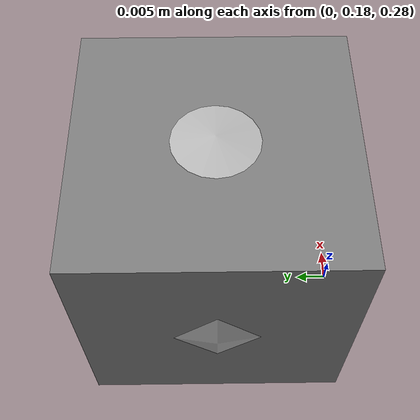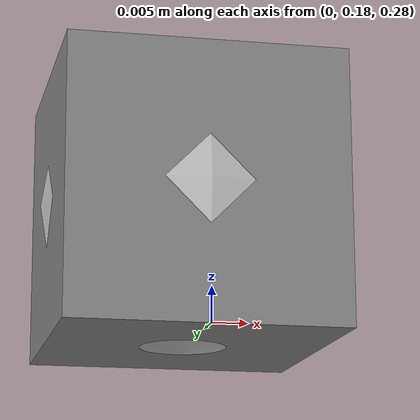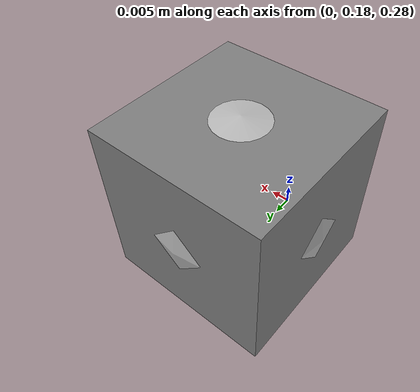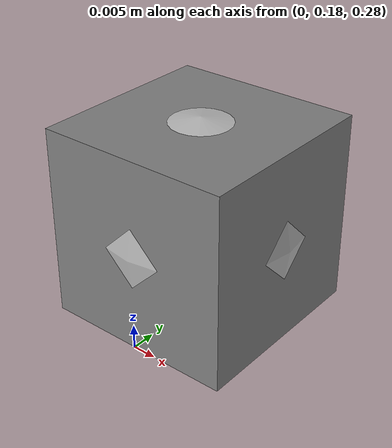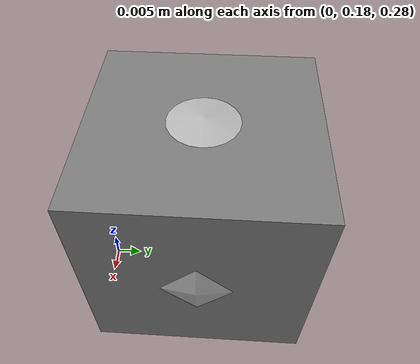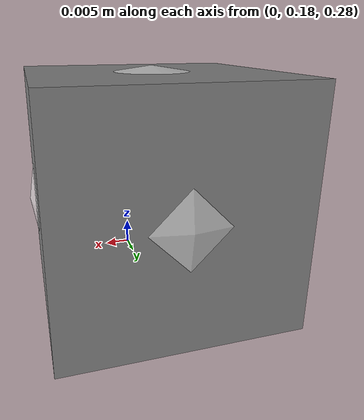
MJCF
<mujoco>
    <compiler angle="radian" texturedir="texture/"/>
	<option timestep="0.002" iterations="50" apirate="50" solver="Newton" tolerance="1e-10" cone="elliptic"/>
	<size njmax="600" nconmax="150" nstack="300000"/>
	<statistic extent="1" center="0 -0.2 0.2"/>
    <visual>
        <quality shadowsize="2048"/>
        <map fogstart="6" fogend="10"/>
        <headlight diffuse=".6 .6 .6" specular="0 0 0"/>
	</visual>

	<include file="assets.xml"/>
	<include file="camera.xml"/>
	<worldbody>
	</worldbody>
</mujoco>

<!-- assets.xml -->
<mujoco>
    <!-- ======== Room ======= -->
    <asset>
        <texture name="groundplane" type="2d" builtin="checker" rgb1=".2 .3 .4"
            rgb2=".1 .2 .3" width="100" height="100" mark="none" markrgb=".8 .8 .8"/>
        <texture name="marble2d" type="2d" file="marble.png"/>
        <texture name="marblecube" type="cube" file="marble.png"/>

        <material name="groundplane" texture="groundplane" texrepeat="10 10"/>
		<material name="table2d" specular="0.3" shininess="0." reflectance="0" rgba=".8 .8 0.8 1"/>
		<material name="tablecube" specular="0.3" shininess="0." reflectance="0" rgba=".8 .8 0.8 1"/>

        <material name="backgroundplane" specular="0" shininess="0." reflectance="0" rgba="0. 0. 0. 1"/>
    </asset>

    <!-- ======== Objects ======= -->
	<asset>
		<texture file="wood.png"/>
		<texture name="wood2d" type="2d" file="wood.png"/>
		<texture file="square.png"/>
		<texture name="foil" file="silverRaw.png"/>
        <texture file="woodb.png"/>

		<material name="MatFoil" texture="foil" specular="1" shininess=".3"  rgba=".9 .9 .9 1"/>
		<material name="MatPlane" specular=".3" shininess=".3" rgba=".3 .3 .2 1"/>
        <material name="MatWood" texture="wood" specular="0.4" shininess=".1" texrepeat="3 3"/>
        <material name="MatSquare" texture="square" specular="1" shininess=".6"  rgba=".8 .8 .8 1"/>
        <material name="MatWoodR" texture="wood" specular="1" shininess=".3"  rgba="1 0.5 0.5 1"/>
        <material name="MatWoodG" texture="wood" specular="1" shininess=".3"  rgba="0.2 1 0.2 1"/>
        <material name="MatWoodB" texture="woodb" specular="1" shininess=".3"/>
	</asset>

</mujoco>

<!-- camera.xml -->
<mujoco>
	<worldbody>
		<!-- Camera base -->
		<body name="rgb_camera_base" mocap="true" pos="0 0.2 0.3">
			<geom type="sphere" conaffinity="0" contype="0" pos="0 0 0" rgba="1.0 1.0 1.0 0.5" size="0.021 0.021 0.021"/>

			<!-- Camera arm -->
			<body name="rgb_camera_arm" pos="0 0 0" axisangle="0 0 1 -1.570796">
				<geom type="box" size="0.01 0.01 0.01" zaxis="0 1 0"/>
				<joint name="rgb_camera_jointz" type="hinge" damping="0.4" pos="0 0 0" axis="0 0 1" range="-1.57 1.57"/>

				<!-- Camera head -->
				<body name="rgb_camera_head" pos="0 0.0 0" axisangle="1 0 0 1.570796">
					<joint name="rgb_camera_jointx" type="hinge" damping="0.4" pos="0 0 0" axis="1 0 0" range="-1.57 1.57"/>
					<geom type="box" size="0.02 0.02 0.02" zaxis="0 1 0"/>
					<camera name="rgb_camera" pos="0 0 0" euler="0 0 0" fovy="45" ipd="0.068"/>
				</body>
			</body>
		</body>
	</worldbody>

	<!-- weld camera base and arm: control base position -> control camera position -->
	<equality>
		<weld body1="rgb_camera_base" body2="rgb_camera_arm" solref="0.01 1" solimp=".9 .9 0.01"/>
	</equality>

</mujoco>
